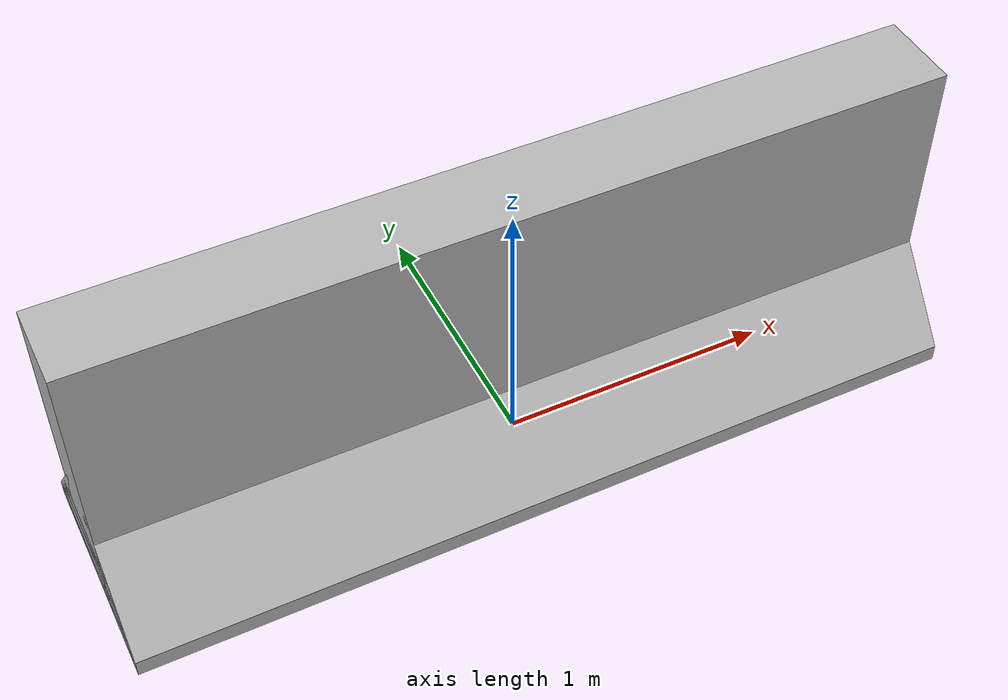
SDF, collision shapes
<?xml version="1.0" ?>
<sdf version="1.5">
  <model name="jersey_barrier">
    <static>true</static>
    <link name="link">
      <visual name="visual">
        <geometry>
          <mesh>
            <uri>meshes/jersey_barrier.dae</uri>
            <scale>0.75 1 1</scale>
          </mesh>
        </geometry>
      </visual>
      <collision name="upright">
        <pose>0 0 0.5715 0 0 0</pose>
        <geometry>
          <box>
            <size>3.049065 0.3063 1.143</size>
          </box>
        </geometry>
      </collision>
      <collision name="base">
        <pose>0 0 0.032258 0 0 0</pose>
        <geometry>
          <box>
            <size>3.049065 0.8107 0.064516</size>
          </box>
        </geometry>
      </collision>
      <collision name="base2">
        <pose>0 0 0.1 0 0 0</pose>
        <geometry>
          <box>
            <size>3.049065 0.65 0.1</size>
          </box>
        </geometry>
      </collision>
      <collision name="base3">
        <pose>0 0 0.2 0 0 0</pose>
        <geometry>
          <box>
            <size>3.049065 0.5 0.1</size>
          </box>
        </geometry>
      </collision>
      <collision name="left-angle">
        <pose>0 -0.224 0.2401 0.9 0 0</pose>
        <geometry>
          <box>
            <size>3.049065 0.5 0.064516</size>
          </box>
        </geometry>
      </collision>
      <collision name="right-angle">
        <pose>0 0.224 0.2401 -0.9 0 0</pose>
        <geometry>
          <box>
            <size>3.049065 0.5 0.064516</size>
          </box>
        </geometry>
      </collision>
    </link>
  </model>
</sdf>
